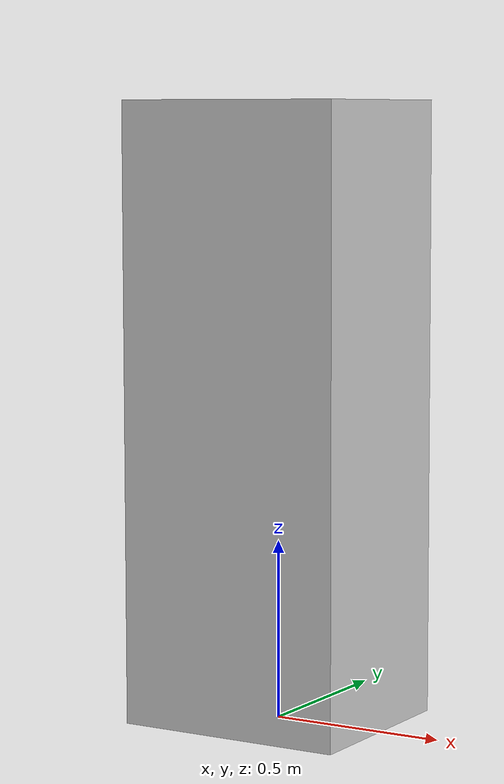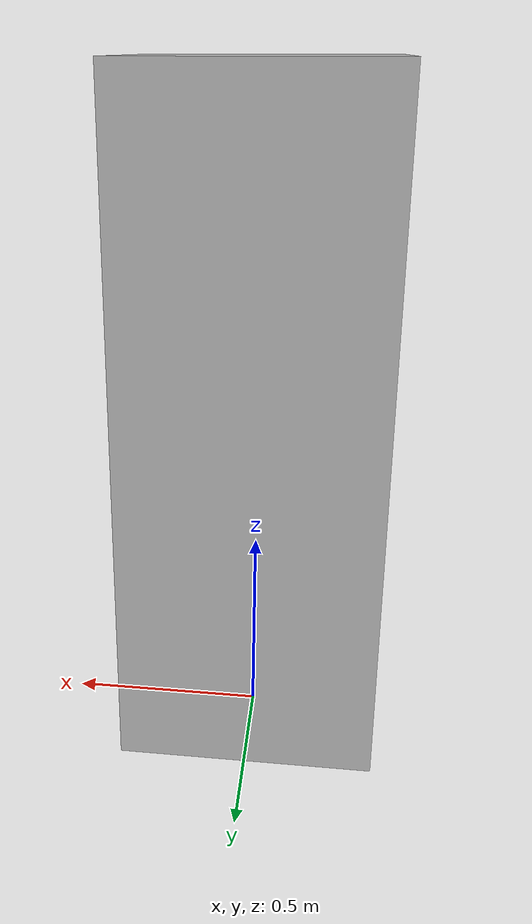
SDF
<?xml version="1.0" ?>
<sdf version="1.6">
  <model name="rwc2022/fridge">
    <static>true</static>
    <link name="1_link">
      <collision name="1_col">
        <geometry>
          <box>
            <size>0.65 0.5525 1.715</size>
          </box>
        </geometry>
      </collision>
      <visual name="1_vis">
        <geometry>
          <box>
            <size>0.65 0.5525 1.715</size>
          </box>
        </geometry>
      </visual>
      <pose>0.0 0.0 0.8575 0 0 0</pose>
    </link>
    <link name="on_top_of">
      <virtual_volume name="on_top_of_vv">
        <geometry>
          <box>
            <size>0.63 0.4924 0.25</size>
          </box>
        </geometry>
        <pose>0.0 0.0 1.86 0 0 0</pose>
      </virtual_volume>
    </link>
    <link name="in_front_of">
      <virtual_volume name="in_front_of_vv">
        <geometry>
          <box>
            <size>0.2 0.3524 0.01</size>
          </box>
        </geometry>
        <pose>0.825 0.0 0.005 0 0 0</pose>
      </virtual_volume>
    </link>
  </model>
</sdf>
